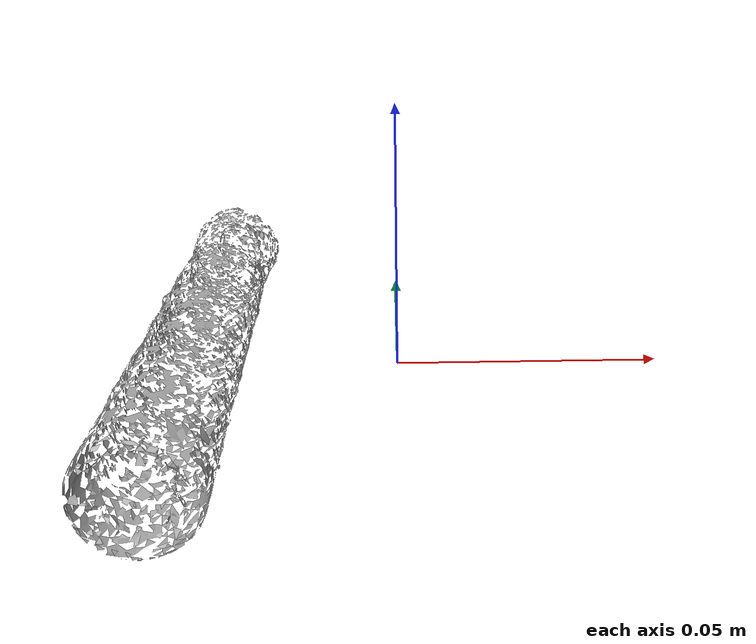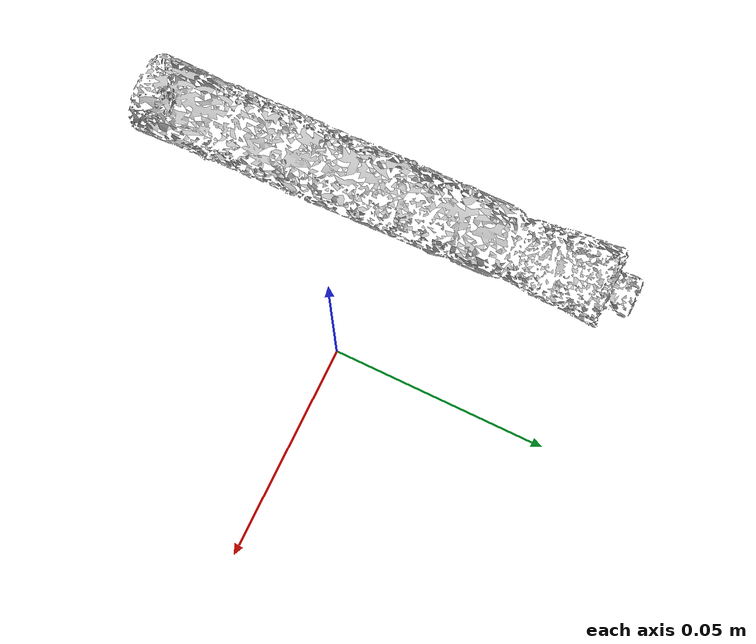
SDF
<?xml version='1.0'?>
<sdf version="1.4">
  <model name="large_marker">
    <static>false</static>
    <link name="link">
      <inertial>
        <pose>-0.035725124851894 -0.00788077074326952 0.009018296996191047 1.5699074828200996 -0.9271848404237286 -3.120076490318127</pose>
        <mass>2.7399944924772163e-05</mass>
        <inertia>
          <ixx>3.098544090953973e-08</ixx>
          <ixy>8.71432084853757e-25</ixy>
          <ixz>-4.210495655559587e-25</ixz>
          <iyy>3.0981194633024707e-08</iyy>
          <iyz>2.426145689961592e-25</iyz>
          <izz>1.0631513526588333e-09</izz>
        </inertia>
      </inertial>
      <collision name="collision">
        <geometry>
          <mesh>
            <!-- Use a downsampled mesh for collisions -->
            <uri>model://040_large_marker/downsampled.obj</uri>
	        </mesh>
        </geometry>
        <surface>
        	<friction>
	           <ode>
	             <mu>3</mu>
	             <mu2>3</mu2>
	           </ode>
	           <torsional>
	              <ode/>
	           </torsional>
	        </friction>
      </surface>
      </collision>
      <visual name="visual">
        <geometry>
          <mesh>
            <uri>model://040_large_marker/google_16k/textured.obj</uri>
	        </mesh>
        </geometry>
        <material>
          <script>
            <uri>model://040_large_marker/large_marker.material</uri>
            <name>large_marker</name>
          </script>
        </material>
      </visual>
    </link>
  </model>
</sdf>
